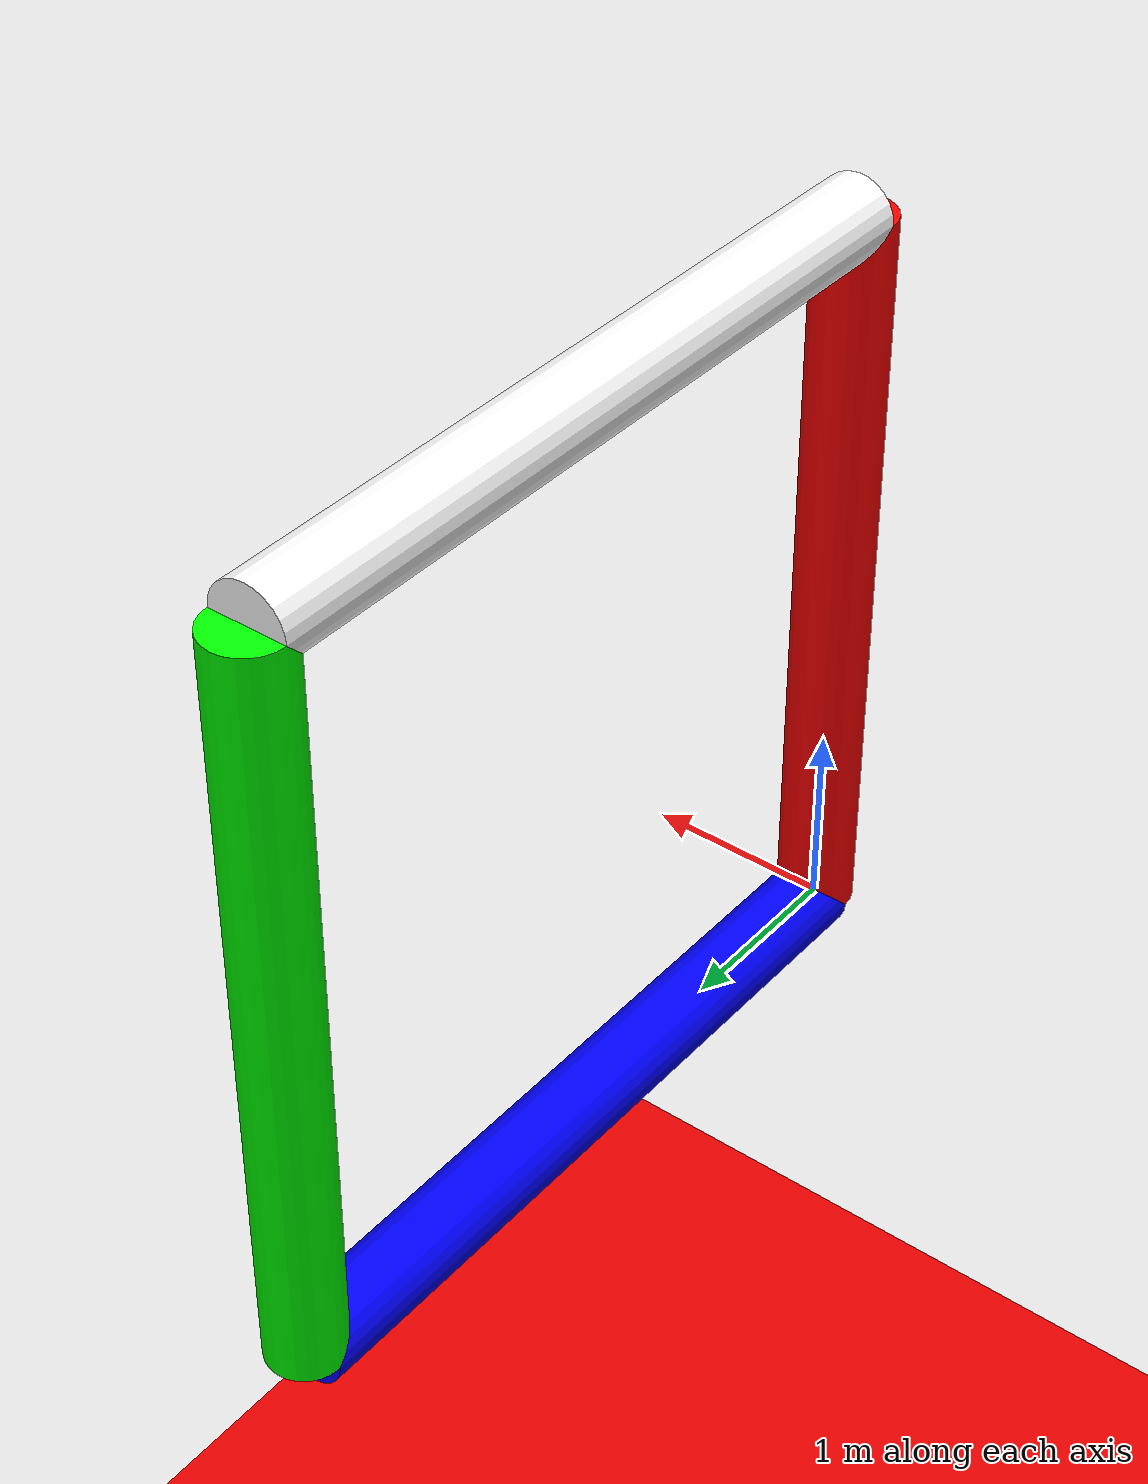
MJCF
<mujoco>
    <option timestep="0.0002" />
    <actuator>
        <motor gear="10000" joint="hinge_1" name="actuator_motor" ctrlrange="-3 3" ctrllimited="true"/>
    </actuator>
    <asset>
        <material name="blue_" rgba="0 0 1 1" />
        <material name="green" rgba="0 1 0 1" />
        <material name="red__" rgba="1 0 0 1" />
        <material name="white" rgba="1 1 1 1" />
    </asset>
    <worldbody>
        <geom type="plane" size="10 10 0.1" pos="0 0 -5" rgba=".9 0 0 1" />
        <light diffuse=".5 .5 .5" pos="0 0 3" dir="0 0 -1" />
        <body name="link_1" pos="0 0 0">
            <site name="attach1" pos="0 0 4" size="0.02" rgba="1 0 1 1" />
            <geom type="cylinder" size=".2    2" pos="0 0 2" euler="0 0 0" material="red__" />
            <body name="link_2" pos="0.0 0 0" euler="0 0 0">
                <joint name="hinge_1" pos="0 0 0" axis="1 0 0" />
                <geom type="cylinder" size=".2    2" pos="0 2 0" euler="90 0 0" material="blue_" />
                <body name="link_3" pos="-0.0 4 0" euler="0 0 0">
                    <joint name="hinge_2" pos="0 0 0" axis="1 0 0" />
                    <geom type="cylinder" size=".2    2" pos="0 0 2" euler="0 0 0" material="green" />
                    <body name="link_4" pos="0.0 0 4" euler="0 0 0">
                        <joint name="hinge_3" pos="0 0 0" axis="1 0 0" />
                        <geom type="cylinder" size=".2    2" pos="0 -2 0" euler="90 0 0" material="white" />
                        <site name="attach2" pos="0 -4 0" size="0.02" rgba="0 1 1 1" />
                    </body>
                </body>
            </body>
        </body>
    </worldbody>

    <contact>
        <exclude body1="link_1" body2="link_2"/>
        <exclude body1="link_1" body2="link_3"/>
        <exclude body1="link_1" body2="link_4"/>
        <exclude body1="link_2" body2="link_3"/>
        <exclude body1="link_2" body2="link_4"/>
        <exclude body1="link_3" body2="link_4"/>
    </contact>
</mujoco>
